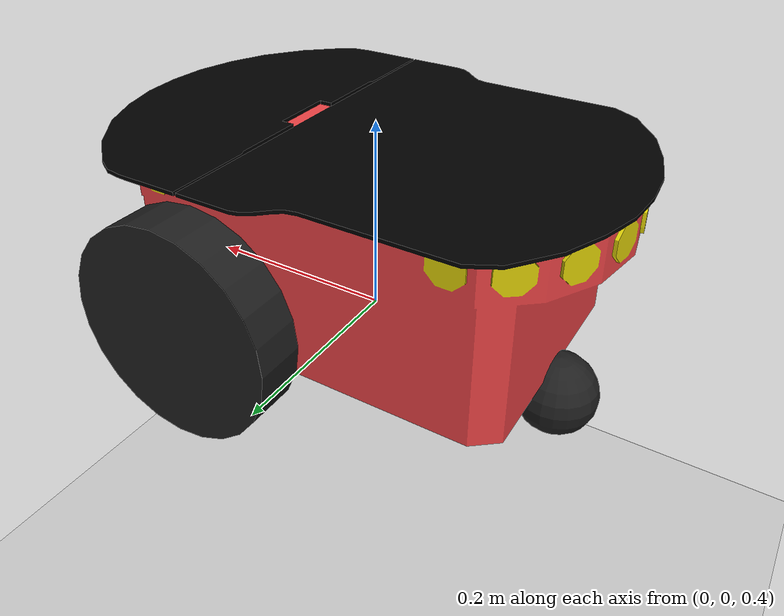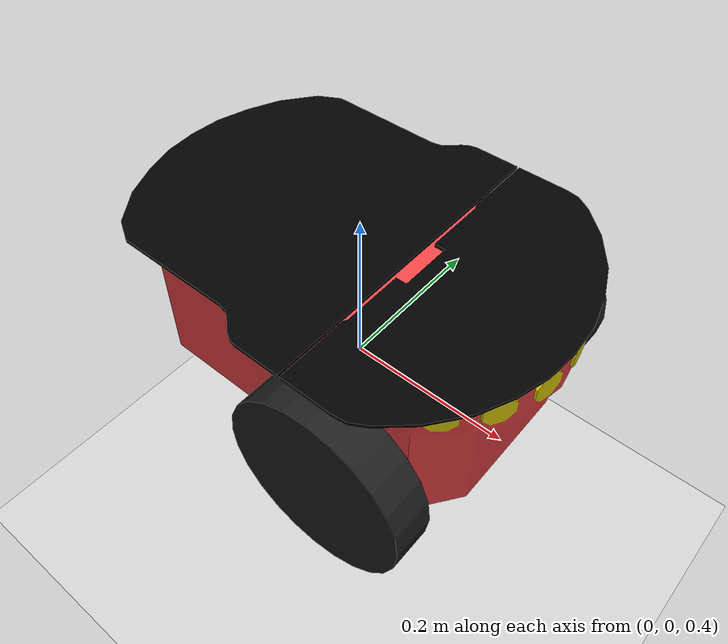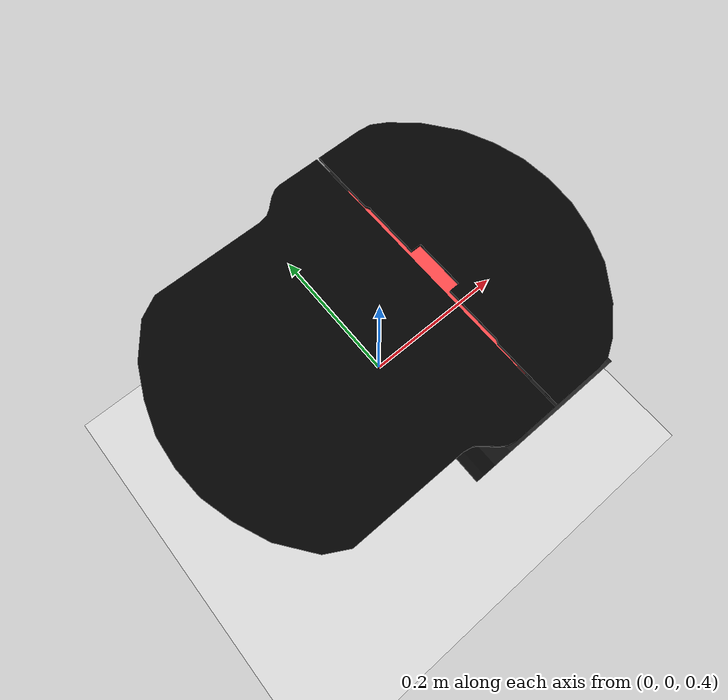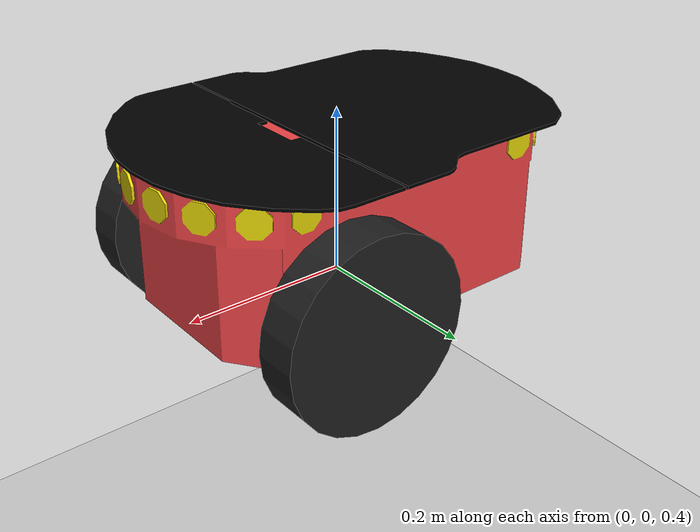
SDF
<?xml version="1.0" ?>

<sdf version="1.6">
  <world name="default">

    <include>
      <uri>model://sun</uri>
    </include>
    <include>
      <uri>model://ground_plane</uri>
    </include>
    <include>
      <pose>0 0 0.33 0 0 0</pose>
      <uri>model://amber</uri>
    </include>

  </world>
</sdf>

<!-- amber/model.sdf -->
<sdf version="1.5">
  <model name="amber">
    <link name="chassis">
      <pose>0 0 0.16 0 0 0</pose>
      <inertial>
        <mass>5.67</mass>
        <inertia>
          <ixx>0.07</ixx>
          <iyy>0.08</iyy>
          <izz>0.10</izz>
          <ixy>0</ixy>
          <ixz>0</ixz>
          <iyz>0</iyz>
        </inertia>
      </inertial>
      <collision name="collision">
        <geometry>
          <box>
            <size>0.445 0.277 0.17</size>
          </box>
        </geometry>
      </collision>
      <collision name="castor_collision">
        <pose>-0.200 0 -0.12 0 0 0</pose>
        <geometry>
          <sphere>
            <radius>0.04</radius>
          </sphere>
        </geometry>
        <surface>
          <friction>
            <ode>
              <mu>0</mu>
              <mu2>0</mu2>
              <slip1>1.0</slip1>
              <slip2>1.0</slip2>
            </ode>
          </friction>
        </surface>
      </collision>
      <visual name="visual">
        <pose>0 0 0.04 0 0 0</pose>
        <geometry>
          <mesh>
            <uri>model://pioneer2dx/meshes/chassis.dae</uri>
          </mesh>
        </geometry>
      </visual>
      <visual name="castor_visual">
        <pose>-0.200 0 -0.12 0 0 0</pose>
        <geometry>
          <sphere>
            <radius>0.04</radius>
          </sphere>
        </geometry>
        <material>
          <script>
            <uri>file://media/materials/scripts/gazebo.material</uri>
            <name>Gazebo/FlatBlack</name>
          </script>
        </material>
      </visual>
    </link>
    <link name="right_wheel">
      <pose>0.1 -.17 0.11 0 1.5707 1.5707</pose>
      <inertial>
        <mass>1.5</mass>
        <inertia>
          <ixx>0.0051</ixx>
          <iyy>0.0051</iyy>
          <izz>0.0090</izz>
          <ixy>0</ixy>
          <ixz>0</ixz>
          <iyz>0</iyz>
        </inertia>
      </inertial>
      <collision name="collision">
        <geometry>
          <cylinder>
            <radius>0.11</radius>
            <length>0.05</length>
          </cylinder>
        </geometry>
        <surface>
          <friction>
            <ode>
              <mu>100000.0</mu>
              <mu2>100000.0</mu2>
              <slip1>0.0</slip1>
              <slip2>0.0</slip2>
            </ode>
          </friction>
        </surface>
      </collision>
      <visual name="visual">
        <geometry>
          <cylinder>
            <radius>0.11</radius>
            <length>0.05</length>
          </cylinder>
        </geometry>
        <material>
          <script>
            <uri>file://media/materials/scripts/gazebo.material</uri>
            <name>Gazebo/FlatBlack</name>
          </script>
        </material>
      </visual>
    </link>
    <link name="left_wheel">
      <pose>0.1 .17 0.11 0 1.5707 1.5707</pose>
      <inertial>
        <mass>1.5</mass>
        <inertia>
          <ixx>0.0051</ixx>
          <iyy>0.0051</iyy>
          <izz>0.0090</izz>
          <ixy>0</ixy>
          <ixz>0</ixz>
          <iyz>0</iyz>
        </inertia>
      </inertial>
      <collision name="collision">
        <geometry>
          <cylinder>
            <radius>0.11</radius>
            <length>0.05</length>
          </cylinder>
        </geometry>
        <surface>
          <friction>
            <ode>
              <mu>100000.0</mu>
              <mu2>100000.0</mu2>
              <slip1>0.0</slip1>
              <slip2>0.0</slip2>
            </ode>
          </friction>
        </surface>
      </collision>
      <visual name="visual">
        <geometry>
          <cylinder>
            <radius>0.11</radius>
            <length>0.05</length>
          </cylinder>
        </geometry>
        <material>
          <script>
            <uri>file://media/materials/scripts/gazebo.material</uri>
            <name>Gazebo/FlatBlack</name>
          </script>
        </material>
      </visual>
    </link>
    <joint type="revolute" name="left_wheel_hinge">
      <pose>0 0 -0.03 0 0 0</pose>
      <child>left_wheel</child>
      <parent>chassis</parent>
      <axis>
        <xyz>0 1 0</xyz>
        <use_parent_model_frame>true</use_parent_model_frame>
      </axis>
    </joint>
    <joint type="revolute" name="right_wheel_hinge">
      <pose>0 0 0.03 0 0 0</pose>
      <child>right_wheel</child>
      <parent>chassis</parent>
      <axis>
        <xyz>0 1 0</xyz>
        <use_parent_model_frame>true</use_parent_model_frame>
      </axis>
    </joint>
    <plugin name="diff_drive" filename="libgazebo_ros_diff_drive.so">
        <ros>
            <namespace>/amber_sim</namespace>
        </ros>

        <left_joint>left_wheel_hinge</left_joint>
        <right_joint>right_wheel_hinge</right_joint>

        <wheel_diameter>0.22</wheel_diameter>

        <publish_odom>true</publish_odom>

        <robot_base_frame>chassis</robot_base_frame>
    </plugin>
  </model>
</sdf>
